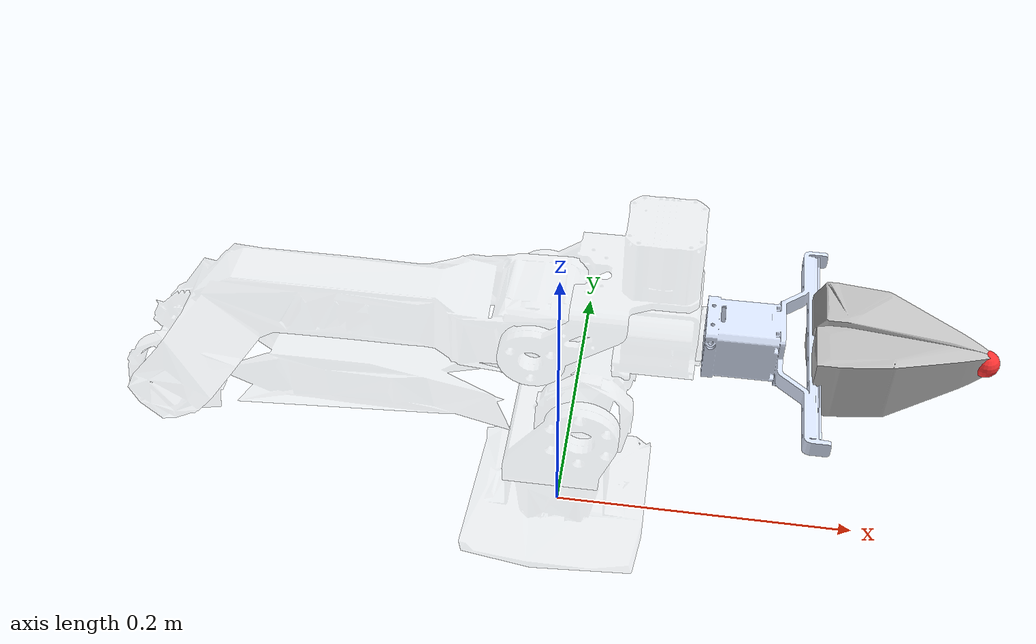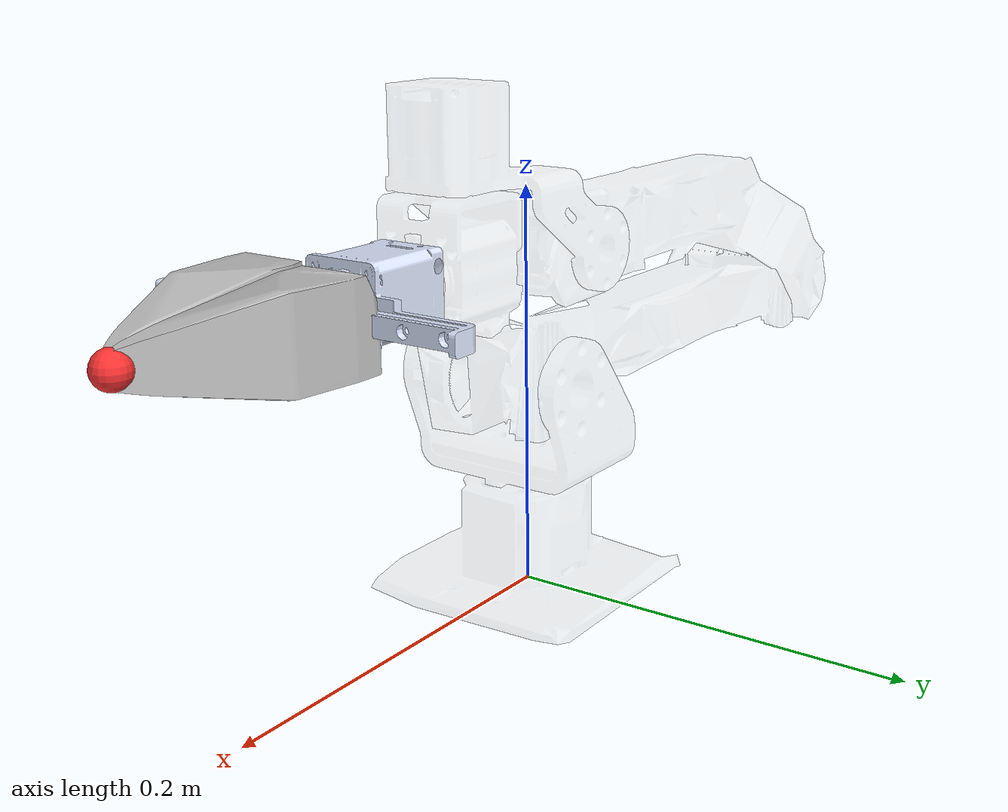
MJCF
<mujoco model="panthera_ht">
  <compiler angle="radian" meshdir="." autolimits="true" />
  <option timestep="0.002" integrator="implicitfast" cone="elliptic" impratio="10" />
  <default>
    <joint damping="0.2" armature="0.05" frictionloss="0.1" />
    <general biastype="affine" />
    <default class="visual">
      <geom type="mesh" group="2" contype="0" conaffinity="0" density="0" />
    </default>
    <default class="collision">
      <geom type="mesh" group="3" contype="1" conaffinity="1" condim="4" friction="1.0 0.05 0.001" />
    </default>
  </default>
  <asset>
    <mesh name="base_link" content_type="model/stl" file="meshes/visual/base_link.STL" />
    <mesh name="link1" content_type="model/stl" file="meshes/visual/link1.STL" />
    <mesh name="link2" content_type="model/stl" file="meshes/visual/link2.STL" />
    <mesh name="link3" content_type="model/stl" file="meshes/visual/link3.STL" />
    <mesh name="link4" content_type="model/stl" file="meshes/visual/link4.STL" />
    <mesh name="link5" content_type="model/stl" file="meshes/visual/link5.STL" />
    <mesh name="link6" content_type="model/stl" file="meshes/visual/link6.STL" />
    <mesh name="L_finger" content_type="model/stl" file="meshes/visual/L_finger.STL" />
    <mesh name="R_finger" content_type="model/stl" file="meshes/visual/R_finger.STL" />
    <mesh name="gripper_center" content_type="model/stl" file="meshes/visual/gripper_center.STL" />
    <mesh name="base_link_col" content_type="model/stl" file="meshes/collision/base_link.STL" />
    <mesh name="link1_col" content_type="model/stl" file="meshes/collision/link1.STL" />
    <mesh name="link2_col" content_type="model/stl" file="meshes/collision/link2.STL" />
    <mesh name="link3_col" content_type="model/stl" file="meshes/collision/link3.STL" />
    <mesh name="link4_col" content_type="model/stl" file="meshes/collision/link4.STL" />
    <mesh name="link5_col" content_type="model/stl" file="meshes/collision/link5.STL" />
    <mesh name="link6_col" content_type="model/stl" file="meshes/collision/link6.STL" />
    <mesh name="L_finger_col" content_type="model/stl" file="meshes/collision/L_finger.STL" />
    <mesh name="R_finger_col" content_type="model/stl" file="meshes/collision/R_finger.STL" />
    <mesh name="gripper_center_col" content_type="model/stl" file="meshes/collision/gripper_center.STL" />
  </asset>
  <worldbody>
    <geom class="visual" mesh="base_link" rgba="0.752941 0.752941 0.752941 0.12" />
    <geom class="collision" mesh="base_link_col" />
    <body name="link1" pos="0 0 0.0584">
      <inertial pos="0.00278873 -0.00094387 0.0249184" quat="0.692661 0.650108 0.225614 -0.216051" mass="0.281016" diaginertia="0.000421358 0.000343661 0.000213101" />
      <joint name="joint1" range="-2.4 2.4" actuatorfrcrange="-21 21" />
      <geom class="visual" mesh="link1" rgba="0.752941 0.752941 0.752941 0.12" />
      <geom class="collision" mesh="link1_col" />
      <body name="link2" pos="0.018199 0 0.053">
        <inertial pos="-0.129362 -0.00213339 7.183e-05" quat="0.00988446 0.706238 0.00888299 0.70785" mass="1.51651" diaginertia="0.0227212 0.0226105 0.00044695" />
        <joint name="joint2" range="0 3.2" actuatorfrcrange="-36 36" axis="0 1 0" />
        <geom class="visual" mesh="link2" rgba="0.752941 0.752941 0.752941 0.12" />
        <geom class="collision" mesh="link2_col" />
        <body name="link3" pos="-0.26 0 0">
          <inertial pos="0.163431 -0.00164646 0.0533743" quat="-0.0903299 0.649643 -0.0759146 0.751027" mass="0.669178" diaginertia="0.00543522 0.00538336 0.00051072" />
          <joint name="joint3" range="0 4" actuatorfrcrange="-36 36" axis="0 -1 0" />
          <geom class="visual" mesh="link3" rgba="0.752941 0.752941 0.752941 0.12" />
          <geom class="collision" mesh="link3_col" />
          <body name="link4" pos="0.23 0 0.06">
            <inertial pos="0.0524013 -0.00055249 0.0409418" quat="-0.0119308 0.442275 0.0207973 0.896559" mass="0.307805" diaginertia="0.000483913 0.000395159 0.000124278" />
            <joint name="joint4" range="-1.6 1.6" actuatorfrcrange="-21 21" axis="0 -1 0" />
            <geom class="visual" mesh="link4" rgba="0.752941 0.752941 0.752941 0.12" />
            <geom class="collision" mesh="link4_col" />
            <body name="link5" pos="0.07 0 0.036319">
              <inertial pos="0.00303007 8.509e-05 -0.0362408" quat="0.705992 0.0034971 0.00378767 0.708201" mass="0.237111" diaginertia="5.77301e-05 4.81515e-05 3.35885e-05" />
              <joint name="joint5" range="-1.7 1.7" actuatorfrcrange="-10 10" axis="0 0 -1" />
              <geom class="visual" mesh="link5" rgba="0.752941 0.752941 0.752941 0.12" />
              <geom class="collision" mesh="link5_col" />
              <body name="link6" pos="0.02345 0 -0.039">
                <inertial pos="0.0365806 -4.4236e-05 -3.47544e-05" quat="0.512706 0.486973 -0.500963 0.499025" mass="0.106038" diaginertia="0.00177399 0.00116496 0.000713576" />
                <joint name="joint6" range="-2.5 2.5" actuatorfrcrange="-10 10" axis="1 0 0" />
                <geom class="visual" mesh="link6" rgba="0.752941 0.752941 0.752941 0.12" />
                <geom class="collision" mesh="link6_col" />
                <geom class="visual" mesh="gripper_center" rgba="0.866667 0.909804 1 1" pos="0.165 0 0" />
                <geom class="collision" mesh="gripper_center_col" pos="0.165 0 0" />
                <body name="L_finger" pos="0.165 0 0">
                  <inertial pos="-0.0685513 0.0168638 -0.000510235" quat="0.462198 0.46404 0.540064 0.528556" mass="0.127458" diaginertia="5.21681e-05 4.65029e-05 2.2273e-05" />
                  <joint name="L_finger_joint" type="slide" range="0 0.04" actuatorfrcrange="-100 100" axis="0 1 0" />
                  <geom class="visual" mesh="L_finger" rgba="0.752941 0.752941 0.752941 1" />
                  <geom class="collision" mesh="L_finger_col" contype="0" conaffinity="0" />
                  <site name="L_finger_tip" pos="0.005 0 0" size="0.005" group="4" />
                  <geom name="L_finger_pad" type="box" size="0.0225 0.002 0.01" pos="-0.0225 0.0015 0" group="3" condim="6" friction="2.0 0.2 0.01" solref="0.005 1" solimp="0.98 0.99 0.001" />
                  <geom name="L_finger_bulk" type="box" size="0.035 0.015 0.015" pos="-0.058 0.0190 0" group="3" condim="4" friction="1.0 0.05 0.001" />
                </body>
                <body name="R_finger" pos="0.165 0 0">
                  <inertial pos="-0.0685513 -0.0168638 0.000510465" quat="0.540064 0.528556 0.462198 0.46404" mass="0.127458" diaginertia="5.21681e-05 4.65029e-05 2.2273e-05" />
                  <joint name="R_finger_joint" type="slide" range="-0.04 0" actuatorfrcrange="-100 100" axis="0 1 0" />
                  <geom class="visual" mesh="R_finger" rgba="0.752941 0.752941 0.752941 1" />
                  <geom class="collision" mesh="R_finger_col" contype="0" conaffinity="0" />
                  <site name="R_finger_tip" pos="0.005 0 0" size="0.005" group="4" />
                  <geom name="R_finger_pad" type="box" size="0.0225 0.002 0.01" pos="-0.0225 -0.0015 0" group="3" condim="6" friction="2.0 0.2 0.01" solref="0.005 1" solimp="0.98 0.99 0.001" />
                  <geom name="R_finger_bulk" type="box" size="0.035 0.015 0.015" pos="-0.058 -0.0190 0" group="3" condim="4" friction="1.0 0.05 0.001" />
                </body>
                <site name="grip_site" pos="0.16500 0 0" size="0.008" rgba="1 0.2 0.2 1" group="1" />
                <camera name="wrist" pos="0.055 0 0.055" xyaxes="0.00000 -1.00000 0.00000 0.44721 0.00000 0.89443" fovy="70" />
              </body>
            </body>
          </body>
        </body>
      </body>
    </body>
  </worldbody>
  <equality>
    <joint joint1="R_finger_joint" joint2="L_finger_joint" polycoef="0 -1 0 0 0" />
  </equality>
  <contact>
    <exclude body1="world" body2="link1" />
    <exclude body1="L_finger" body2="R_finger" />
    <exclude body1="link6" body2="L_finger" />
    <exclude body1="link6" body2="R_finger" />
  </contact>
  <actuator>
    <position name="joint1" joint="joint1" kp="3000.0" kv="54.0" ctrlrange="-2.4000 2.4000" forcerange="-21.0 21.0" />
    <position name="joint2" joint="joint2" kp="5000.0" kv="90.0" ctrlrange="0.0000 3.2000" forcerange="-36.0 36.0" />
    <position name="joint3" joint="joint3" kp="4000.0" kv="68.0" ctrlrange="0.0000 4.0000" forcerange="-36.0 36.0" />
    <position name="joint4" joint="joint4" kp="1200.0" kv="23.0" ctrlrange="-1.6000 1.6000" forcerange="-21.0 21.0" />
    <position name="joint5" joint="joint5" kp="800.0" kv="14.0" ctrlrange="-1.7000 1.7000" forcerange="-10.0 10.0" />
    <position name="joint6" joint="joint6" kp="800.0" kv="14.0" ctrlrange="-2.5000 2.5000" forcerange="-10.0 10.0" />
    <position name="gripper" joint="L_finger_joint" kp="400.0" kv="20.0" ctrlrange="0 0.04" forcerange="-3 3" />
  </actuator>
  <keyframe>
    <key name="home" qpos="0 1.2 1.4 0 0 0 0.04 -0.04" ctrl="0 1.2 1.4 0 0 0 0.04" />
  </keyframe>
</mujoco>
